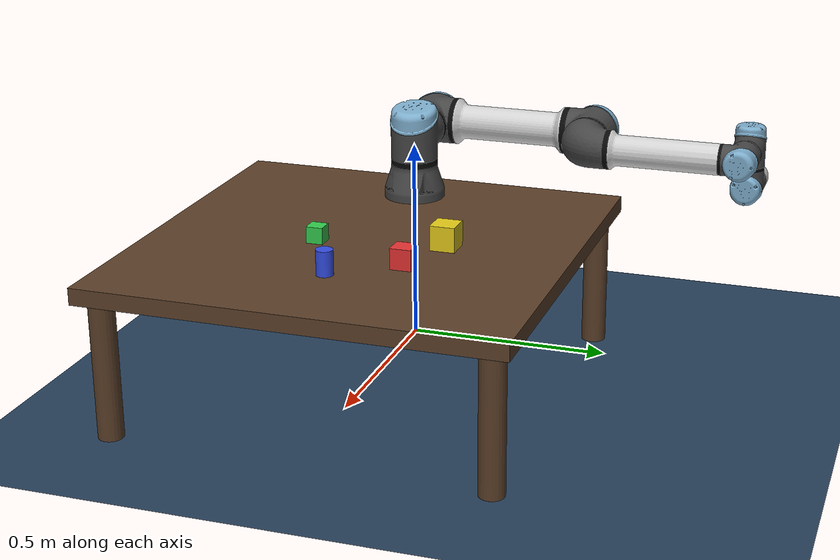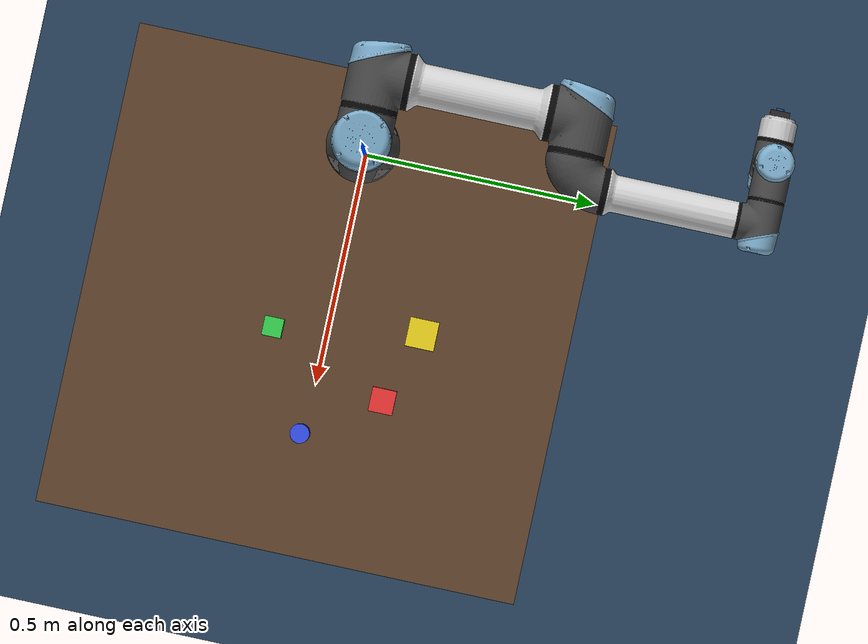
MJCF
<mujoco model="ur5e_robotiq_tabletop">
  <compiler angle="radian" autolimits="true"/>

  <option integrator="implicitfast" cone="elliptic" impratio="10"/>

  <statistic center="0.3 0 0.5" extent="1.5"/>

  <visual>
    <headlight diffuse="0.6 0.6 0.6" ambient="0.3 0.3 0.3" specular="0 0 0"/>
    <rgba haze="0.15 0.25 0.35 1"/>
    <global azimuth="150" elevation="-20"/>
  </visual>

  <!-- ==================== Assets ==================== -->
  <asset>
    <!-- Skybox and ground -->
    <texture type="skybox" builtin="gradient" rgb1="0.3 0.5 0.7" rgb2="0 0 0" width="512" height="3072"/>
    <texture type="2d" name="groundplane" builtin="checker" mark="edge"
             rgb1="0.2 0.3 0.4" rgb2="0.1 0.2 0.3" markrgb="0.8 0.8 0.8"
             width="300" height="300"/>
    <material name="groundplane" texture="groundplane" texuniform="true" texrepeat="5 5" reflectance="0.2"/>

    <!-- Table texture -->
    <texture type="2d" name="table_tex" builtin="flat" rgb1="0.6 0.5 0.4"
             width="512" height="512"/>
    <material name="table_mat" texture="table_tex" rgba="0.6 0.5 0.4 1" specular="0.1" shininess="0.1"/>

    <!-- UR5e materials -->
    <material name="black" rgba="0.033 0.033 0.033 1" specular="0.5" shininess="0.25"/>
    <material name="jointgray" rgba="0.278 0.278 0.278 1" specular="0.5" shininess="0.25"/>
    <material name="linkgray" rgba="0.82 0.82 0.82 1" specular="0.5" shininess="0.25"/>
    <material name="urblue" rgba="0.49 0.678 0.8 1" specular="0.5" shininess="0.25"/>

    <!-- Robotiq 2F-85 materials -->
    <material name="gray" rgba="0.5 0.5 0.5 1" specular="0.5" shininess="0.25"/>

    <!-- Object materials -->
    <material name="red_mat" rgba="0.9 0.2 0.2 1" specular="0.5" shininess="0.3"/>
    <material name="green_mat" rgba="0.2 0.8 0.3 1" specular="0.5" shininess="0.3"/>
    <material name="blue_mat" rgba="0.2 0.3 0.9 1" specular="0.5" shininess="0.3"/>
    <material name="yellow_mat" rgba="0.9 0.8 0.1 1" specular="0.5" shininess="0.3"/>

    <!-- UR5e meshes -->
    <mesh file="mujoco_menagerie/universal_robots_ur5e/assets/base_0.obj"/>
    <mesh file="mujoco_menagerie/universal_robots_ur5e/assets/base_1.obj"/>
    <mesh file="mujoco_menagerie/universal_robots_ur5e/assets/shoulder_0.obj"/>
    <mesh file="mujoco_menagerie/universal_robots_ur5e/assets/shoulder_1.obj"/>
    <mesh file="mujoco_menagerie/universal_robots_ur5e/assets/shoulder_2.obj"/>
    <mesh file="mujoco_menagerie/universal_robots_ur5e/assets/upperarm_0.obj"/>
    <mesh file="mujoco_menagerie/universal_robots_ur5e/assets/upperarm_1.obj"/>
    <mesh file="mujoco_menagerie/universal_robots_ur5e/assets/upperarm_2.obj"/>
    <mesh file="mujoco_menagerie/universal_robots_ur5e/assets/upperarm_3.obj"/>
    <mesh file="mujoco_menagerie/universal_robots_ur5e/assets/forearm_0.obj"/>
    <mesh file="mujoco_menagerie/universal_robots_ur5e/assets/forearm_1.obj"/>
    <mesh file="mujoco_menagerie/universal_robots_ur5e/assets/forearm_2.obj"/>
    <mesh file="mujoco_menagerie/universal_robots_ur5e/assets/forearm_3.obj"/>
    <mesh file="mujoco_menagerie/universal_robots_ur5e/assets/wrist1_0.obj"/>
    <mesh file="mujoco_menagerie/universal_robots_ur5e/assets/wrist1_1.obj"/>
    <mesh file="mujoco_menagerie/universal_robots_ur5e/assets/wrist1_2.obj"/>
    <mesh file="mujoco_menagerie/universal_robots_ur5e/assets/wrist2_0.obj"/>
    <mesh file="mujoco_menagerie/universal_robots_ur5e/assets/wrist2_1.obj"/>
    <mesh file="mujoco_menagerie/universal_robots_ur5e/assets/wrist2_2.obj"/>
    <mesh file="mujoco_menagerie/universal_robots_ur5e/assets/wrist3.obj"/>

    <!-- Robotiq 2F-85 meshes (STL files in mm, need scale to meters) -->
    <mesh file="mujoco_menagerie/robotiq_2f85/assets/base_mount.stl" scale="0.001 0.001 0.001"/>
    <mesh file="mujoco_menagerie/robotiq_2f85/assets/base.stl" scale="0.001 0.001 0.001"/>
    <mesh file="mujoco_menagerie/robotiq_2f85/assets/driver.stl" scale="0.001 0.001 0.001"/>
    <mesh file="mujoco_menagerie/robotiq_2f85/assets/coupler.stl" scale="0.001 0.001 0.001"/>
    <mesh file="mujoco_menagerie/robotiq_2f85/assets/follower.stl" scale="0.001 0.001 0.001"/>
    <mesh file="mujoco_menagerie/robotiq_2f85/assets/pad.stl" scale="0.001 0.001 0.001"/>
    <mesh file="mujoco_menagerie/robotiq_2f85/assets/silicone_pad.stl" scale="0.001 0.001 0.001"/>
    <mesh file="mujoco_menagerie/robotiq_2f85/assets/spring_link.stl" scale="0.001 0.001 0.001"/>
  </asset>

  <!-- ==================== Defaults ==================== -->
  <default>
    <!-- UR5e defaults -->
    <default class="ur5e">
      <material specular="0.5" shininess="0.25"/>
      <joint axis="0 1 0" range="-6.28319 6.28319" armature="0.1"/>
      <general gaintype="fixed" biastype="affine" ctrlrange="-6.2831 6.2831" gainprm="2000" biasprm="0 -2000 -400"
        forcerange="-150 150"/>
      <default class="size3">
        <default class="size3_limited">
          <joint range="-3.1415 3.1415"/>
          <general ctrlrange="-3.1415 3.1415"/>
        </default>
      </default>
      <default class="size1">
        <general gainprm="500" biasprm="0 -500 -100" forcerange="-28 28"/>
      </default>
      <default class="visual">
        <geom type="mesh" contype="0" conaffinity="0" group="2"/>
      </default>
      <default class="collision">
        <geom type="capsule" group="3"/>
        <default class="eef_collision">
          <geom type="cylinder"/>
        </default>
      </default>
      <site size="0.001" rgba="0.5 0.5 0.5 0.3" group="4"/>
    </default>

    <!-- Robotiq 2F-85 defaults -->
    <default class="2f85">
      <material specular="0.5" shininess="0.25"/>
      <general biastype="affine"/>
      <default class="driver">
        <joint axis="1 0 0" range="0 0.8" armature="0.005" damping="0.1" solimplimit="0.95 0.99 0.001"
          solreflimit="0.005 1"/>
      </default>
      <default class="follower">
        <joint axis="1 0 0" range="-0.87266 0.87266" armature="0.001" pos="0 -0.018 0.0065"
          solimplimit="0.95 0.99 0.001" solreflimit="0.005 1"/>
      </default>
      <default class="spring_link">
        <joint axis="1 0 0" range="-0.29670 0.8" stiffness="0.05" springref="2.62" damping="0.00125"
          armature="0.001" solimplimit="0.95 0.99 0.001" solreflimit="0.005 1"/>
      </default>
      <default class="coupler">
        <joint axis="1 0 0" range="-1.57 0" solimplimit="0.95 0.99 0.001"
          solreflimit="0.005 1"/>
      </default>
      <default class="r2f85_visual">
        <geom type="mesh" contype="0" conaffinity="0" group="2"/>
      </default>
      <default class="r2f85_collision">
        <geom type="mesh" group="3"/>
        <default class="pad_box1">
          <geom mass="0" type="box" pos="0 -0.0026 0.028125" size="0.011 0.004 0.009375" friction="0.7"
            solimp="0.95 0.99 0.001" solref="0.004 1" priority="1" rgba="0.55 0.55 0.55 1"/>
        </default>
        <default class="pad_box2">
          <geom mass="0" type="box" pos="0 -0.0026 0.009375" size="0.011 0.004 0.009375" friction="0.6"
            solimp="0.95 0.99 0.001" solref="0.004 1" priority="1" rgba="0.45 0.45 0.45 1"/>
        </default>
      </default>
    </default>
  </default>

  <!-- ==================== Worldbody ==================== -->
  <worldbody>
    <!-- Lights -->
    <light pos="0.5 0 1.5" dir="0 0 -1" directional="true"/>
    <light pos="0 -0.5 1.2" dir="0 0.3 -0.7" diffuse="0.4 0.4 0.4"/>

    <!-- Ground -->
    <geom name="floor" size="0 0 0.05" type="plane" material="groundplane"/>

    <!-- Table -->
    <body name="table" pos="0.35 0 0.35">
      <geom name="table_top" type="box" size="0.50 0.5 0.02" material="table_mat" mass="50"/>
      <geom name="table_leg1" type="cylinder" size="0.03 0.17" pos="0.45 0.45 -0.19" material="table_mat"/>
      <geom name="table_leg2" type="cylinder" size="0.03 0.17" pos="-0.45 0.45 -0.19" material="table_mat"/>
      <geom name="table_leg3" type="cylinder" size="0.03 0.17" pos="0.45 -0.45 -0.19" material="table_mat"/>
      <geom name="table_leg4" type="cylinder" size="0.03 0.17" pos="-0.45 -0.45 -0.19" material="table_mat"/>
    </body>

    <!-- ==================== UR5e Robot ==================== -->
    <body name="ur5e_base" pos="0.0 0 0.37" quat="0.7071 0 0 -0.7071">
      <light name="spotlight" mode="targetbodycom" target="wrist_2_link" pos="0 -1 2"/>
      <body name="base" quat="0 0 0 -1" childclass="ur5e">
        <inertial mass="4.0" pos="0 0 0" diaginertia="0.00443333156 0.00443333156 0.0072"/>
        <geom mesh="base_0" material="black" class="visual"/>
        <geom mesh="base_1" material="jointgray" class="visual"/>
        <body name="shoulder_link" pos="0 0 0.163">
          <inertial mass="3.7" pos="0 0 0" diaginertia="0.0102675 0.0102675 0.00666"/>
          <joint name="shoulder_pan_joint" class="size3" axis="0 0 1"/>
          <geom mesh="shoulder_0" material="urblue" class="visual"/>
          <geom mesh="shoulder_1" material="black" class="visual"/>
          <geom mesh="shoulder_2" material="jointgray" class="visual"/>
          <geom class="collision" size="0.06 0.06" pos="0 0 -0.04"/>
          <body name="upper_arm_link" pos="0 0.138 0" quat="1 0 1 0">
            <inertial mass="8.393" pos="0 0 0.2125" diaginertia="0.133886 0.133886 0.0151074"/>
            <joint name="shoulder_lift_joint" class="size3"/>
            <geom mesh="upperarm_0" material="linkgray" class="visual"/>
            <geom mesh="upperarm_1" material="black" class="visual"/>
            <geom mesh="upperarm_2" material="jointgray" class="visual"/>
            <geom mesh="upperarm_3" material="urblue" class="visual"/>
            <geom class="collision" pos="0 -0.04 0" quat="1 1 0 0" size="0.06 0.06"/>
            <geom class="collision" size="0.05 0.2" pos="0 0 0.2"/>
            <body name="forearm_link" pos="0 -0.131 0.425">
              <inertial mass="2.275" pos="0 0 0.196" diaginertia="0.0311796 0.0311796 0.004095"/>
              <joint name="elbow_joint" class="size3_limited"/>
              <geom mesh="forearm_0" material="urblue" class="visual"/>
              <geom mesh="forearm_1" material="linkgray" class="visual"/>
              <geom mesh="forearm_2" material="black" class="visual"/>
              <geom mesh="forearm_3" material="jointgray" class="visual"/>
              <geom class="collision" pos="0 0.08 0" quat="1 1 0 0" size="0.055 0.06"/>
              <geom class="collision" size="0.038 0.19" pos="0 0 0.2"/>
              <body name="wrist_1_link" pos="0 0 0.392" quat="1 0 1 0">
                <inertial mass="1.219" pos="0 0.127 0" diaginertia="0.0025599 0.0025599 0.0021942"/>
                <joint name="wrist_1_joint" class="size1"/>
                <geom mesh="wrist1_0" material="black" class="visual"/>
                <geom mesh="wrist1_1" material="urblue" class="visual"/>
                <geom mesh="wrist1_2" material="jointgray" class="visual"/>
                <geom class="collision" pos="0 0.05 0" quat="1 1 0 0" size="0.04 0.07"/>
                <body name="wrist_2_link" pos="0 0.127 0">
                  <inertial mass="1.219" pos="0 0 0.1" diaginertia="0.0025599 0.0025599 0.0021942"/>
                  <joint name="wrist_2_joint" axis="0 0 1" class="size1"/>
                  <geom mesh="wrist2_0" material="black" class="visual"/>
                  <geom mesh="wrist2_1" material="urblue" class="visual"/>
                  <geom mesh="wrist2_2" material="jointgray" class="visual"/>
                  <geom class="collision" size="0.04 0.06" pos="0 0 0.04"/>
                  <geom class="collision" pos="0 0.02 0.1" quat="1 1 0 0" size="0.04 0.04"/>
                  <body name="wrist_3_link" pos="0 0 0.1">
                    <inertial mass="0.1889" pos="0 0.0771683 0" quat="1 0 0 1"
                      diaginertia="0.000132134 9.90863e-05 9.90863e-05"/>
                    <joint name="wrist_3_joint" class="size1"/>
                    <geom material="linkgray" mesh="wrist3" class="visual"/>
                    <geom class="eef_collision" pos="0 0.08 0" quat="1 1 0 0" size="0.04 0.02"/>
                    <site name="attachment_site" pos="0 0.1 0" quat="-1 1 0 0"/>

                    <!-- Wrist camera (eye-in-hand) — 与夹爪同轴向下观察 -->
                    <camera name="wrist_cam" pos="0 0.1 0.04" xyaxes="1 0 0 0 0 1" fovy="75"/>

                    <!-- 相机外壳可视化模型 (纯视觉，不参与碰撞) -->
                    <body name="wrist_cam_body" pos="0 0.1 0.04">
                      <!-- 相机主体 (深灰色小方盒) -->
                      <geom type="box" size="0.02 0.015 0.012" rgba="0.15 0.15 0.15 1"
                            contype="0" conaffinity="0" group="2" mass="0"/>
                      <!-- 镜头 (青色圆柱，朝向夹爪方向/+Y) -->
                      <geom type="cylinder" size="0.008 0.005" pos="0 0.015 0"
                            quat="0.707 0.707 0 0" rgba="0.1 0.3 0.5 0.9"
                            contype="0" conaffinity="0" group="2" mass="0"/>
                      <!-- 指示灯 (小绿点) -->
                      <geom type="sphere" size="0.003" pos="0.015 0.005 0.008"
                            rgba="0.1 0.9 0.1 1"
                            contype="0" conaffinity="0" group="2" mass="0"/>
                    </body>

                    <!-- ==================== Robotiq 2F-85 Gripper ==================== -->
                    <body name="gripper_base_mount" pos="0 0.1 0" quat="-1 1 0 0" childclass="2f85">
                      <geom class="r2f85_visual" mesh="base_mount" material="black"/>
                      <geom class="r2f85_collision" mesh="base_mount"/>
                      <body name="gripper_base" pos="0 0 0.0038" quat="1 0 0 -1">
                        <inertial mass="0.777441" pos="0 -2.70394e-05 0.0354675" quat="1 -0.00152849 0 0"
                          diaginertia="0.000260285 0.000225381 0.000152708"/>
                        <geom class="r2f85_visual" mesh="base" material="black"/>
                        <geom class="r2f85_collision" mesh="base"/>
                        <site name="pinch" pos="0 0 0.145" type="sphere" group="5" rgba="0.9 0.9 0.9 1" size="0.005"/>

                        <!-- Right-hand side 4-bar linkage -->
                        <body name="right_driver" pos="0 0.0306011 0.054904">
                          <inertial mass="0.00899563" pos="2.96931e-12 0.0177547 0.00107314"
                            quat="0.681301 0.732003 0 0"
                            diaginertia="1.72352e-06 1.60906e-06 3.22006e-07"/>
                          <joint name="right_driver_joint" class="driver"/>
                          <geom class="r2f85_visual" mesh="driver" material="gray"/>
                          <geom class="r2f85_collision" mesh="driver"/>
                          <body name="right_coupler" pos="0 0.0315 -0.0041">
                            <inertial mass="0.0140974" pos="0 0.00301209 0.0232175"
                              quat="0.705636 -0.0455904 0.0455904 0.705636"
                              diaginertia="4.16206e-06 3.52216e-06 8.88131e-07"/>
                            <joint name="right_coupler_joint" class="coupler"/>
                            <geom class="r2f85_visual" mesh="coupler" material="black"/>
                            <geom class="r2f85_collision" mesh="coupler"/>
                          </body>
                        </body>
                        <body name="right_spring_link" pos="0 0.0132 0.0609">
                          <inertial mass="0.0221642" pos="-8.65005e-09 0.0181624 0.0212658"
                            quat="0.663403 -0.244737 0.244737 0.663403"
                            diaginertia="8.96853e-06 6.71733e-06 2.63931e-06"/>
                          <joint name="right_spring_link_joint" class="spring_link"/>
                          <geom class="r2f85_visual" mesh="spring_link" material="black"/>
                          <geom class="r2f85_collision" mesh="spring_link"/>
                          <body name="right_follower" pos="0 0.055 0.0375">
                            <inertial mass="0.0125222" pos="0 -0.011046 0.0124786" quat="1 0.1664 0 0"
                              diaginertia="2.67415e-06 2.4559e-06 6.02031e-07"/>
                            <joint name="right_follower_joint" class="follower"/>
                            <geom class="r2f85_visual" mesh="follower" material="black"/>
                            <geom class="r2f85_collision" mesh="follower"/>
                            <body name="right_pad" pos="0 -0.0189 0.01352">
                              <geom class="pad_box1" name="right_pad1"/>
                              <geom class="pad_box2" name="right_pad2"/>
                              <inertial mass="0.0035" pos="0 -0.0025 0.0185" quat="0.707107 0 0 0.707107"
                                diaginertia="4.73958e-07 3.64583e-07 1.23958e-07"/>
                              <geom class="r2f85_visual" mesh="pad"/>
                              <body name="right_silicone_pad">
                                <geom class="r2f85_visual" mesh="silicone_pad" material="black"/>
                              </body>
                            </body>
                          </body>
                        </body>

                        <!-- Left-hand side 4-bar linkage -->
                        <body name="left_driver" pos="0 -0.0306011 0.054904" quat="0 0 0 1">
                          <inertial mass="0.00899563" pos="0 0.0177547 0.00107314"
                            quat="0.681301 0.732003 0 0"
                            diaginertia="1.72352e-06 1.60906e-06 3.22006e-07"/>
                          <joint name="left_driver_joint" class="driver"/>
                          <geom class="r2f85_visual" mesh="driver" material="gray"/>
                          <geom class="r2f85_collision" mesh="driver"/>
                          <body name="left_coupler" pos="0 0.0315 -0.0041">
                            <inertial mass="0.0140974" pos="0 0.00301209 0.0232175"
                              quat="0.705636 -0.0455904 0.0455904 0.705636"
                              diaginertia="4.16206e-06 3.52216e-06 8.88131e-07"/>
                            <joint name="left_coupler_joint" class="coupler"/>
                            <geom class="r2f85_visual" mesh="coupler" material="black"/>
                            <geom class="r2f85_collision" mesh="coupler"/>
                          </body>
                        </body>
                        <body name="left_spring_link" pos="0 -0.0132 0.0609" quat="0 0 0 1">
                          <inertial mass="0.0221642" pos="-8.65005e-09 0.0181624 0.0212658"
                            quat="0.663403 -0.244737 0.244737 0.663403"
                            diaginertia="8.96853e-06 6.71733e-06 2.63931e-06"/>
                          <joint name="left_spring_link_joint" class="spring_link"/>
                          <geom class="r2f85_visual" mesh="spring_link" material="black"/>
                          <geom class="r2f85_collision" mesh="spring_link"/>
                          <body name="left_follower" pos="0 0.055 0.0375">
                            <inertial mass="0.0125222" pos="0 -0.011046 0.0124786" quat="1 0.1664 0 0"
                              diaginertia="2.67415e-06 2.4559e-06 6.02031e-07"/>
                            <joint name="left_follower_joint" class="follower"/>
                            <geom class="r2f85_visual" mesh="follower" material="black"/>
                            <geom class="r2f85_collision" mesh="follower"/>
                            <body name="left_pad" pos="0 -0.0189 0.01352">
                              <geom class="pad_box1" name="left_pad1"/>
                              <geom class="pad_box2" name="left_pad2"/>
                              <inertial mass="0.0035" pos="0 -0.0025 0.0185" quat="1 0 0 1"
                                diaginertia="4.73958e-07 3.64583e-07 1.23958e-07"/>
                              <geom class="r2f85_visual" mesh="pad"/>
                              <body name="left_silicone_pad">
                                <geom class="r2f85_visual" mesh="silicone_pad" material="black"/>
                              </body>
                            </body>
                          </body>
                        </body>
                      </body>
                    </body>
                    <!-- End of Robotiq 2F-85 -->

                  </body>
                </body>
              </body>
            </body>
          </body>
        </body>
      </body>
    </body>

    <!-- ==================== Overhead Camera ==================== -->
    <camera name="overhead_cam" pos="0.35 0 1.6" quat="0.707 0.707 0 0" fovy="70"/>

    <!-- ==================== Side Camera (for visualization) ==================== -->
    <camera name="side_cam" pos="-0.3 -1.2 1.0" quat="0.6 0.36 0.18 0.69" fovy="50"/>

    <!-- ==================== Graspable Objects ==================== -->
    <body name="red_cube" pos="0.5 0.15 0.395">
      <freejoint name="red_cube_joint"/>
      <geom name="red_cube_geom" type="box" size="0.025 0.025 0.025" material="red_mat"
            mass="0.1" friction="1.0 0.005 0.001"/>
    </body>

    <body name="green_cube" pos="0.4 -0.1 0.39">
      <freejoint name="green_cube_joint"/>
      <geom name="green_cube_geom" type="box" size="0.02 0.02 0.02" material="green_mat"
            mass="0.08" friction="1.0 0.005 0.001"/>
    </body>

    <body name="blue_cylinder" pos="0.6 0.0 0.40">
      <freejoint name="blue_cylinder_joint"/>
      <geom name="blue_cylinder_geom" type="cylinder" size="0.02 0.03" material="blue_mat"
            mass="0.1" friction="1.0 0.005 0.001"/>
    </body>

    <body name="yellow_cube" pos="0.35 0.2 0.40">
      <freejoint name="yellow_cube_joint"/>
      <geom name="yellow_cube_geom" type="box" size="0.03 0.03 0.03" material="yellow_mat"
            mass="0.12" friction="1.0 0.005 0.001"/>
    </body>
  </worldbody>

  <!-- ==================== Contact Exclusions ==================== -->
  <contact>
    <!-- Robotiq internal exclusions -->
    <exclude body1="gripper_base" body2="left_driver"/>
    <exclude body1="gripper_base" body2="right_driver"/>
    <exclude body1="gripper_base" body2="left_spring_link"/>
    <exclude body1="gripper_base" body2="right_spring_link"/>
    <exclude body1="right_coupler" body2="right_follower"/>
    <exclude body1="left_coupler" body2="left_follower"/>
    <!-- Exclude gripper from wrist -->
    <exclude body1="wrist_3_link" body2="gripper_base_mount"/>
    <exclude body1="wrist_3_link" body2="gripper_base"/>
    <!-- Exclude gripper internal parts from table and floor -->
    <exclude body1="gripper_base_mount" body2="gripper_base"/>
    <exclude body1="right_driver" body2="right_spring_link"/>
    <exclude body1="left_driver" body2="left_spring_link"/>
    <exclude body1="right_follower" body2="right_pad"/>
    <exclude body1="left_follower" body2="left_pad"/>
  </contact>

  <!-- ==================== Tendons ==================== -->
  <tendon>
    <fixed name="split">
      <joint joint="right_driver_joint" coef="0.5"/>
      <joint joint="left_driver_joint" coef="0.5"/>
    </fixed>
  </tendon>

  <!-- ==================== Equality Constraints ==================== -->
  <equality>
    <connect anchor="0 0 0" body1="right_follower" body2="right_coupler"
             solimp="0.95 0.99 0.001" solref="0.005 1"/>
    <connect anchor="0 0 0" body1="left_follower" body2="left_coupler"
             solimp="0.95 0.99 0.001" solref="0.005 1"/>
    <joint joint1="right_driver_joint" joint2="left_driver_joint"
           polycoef="0 1 0 0 0" solimp="0.95 0.99 0.001" solref="0.005 1"/>
  </equality>

  <!-- ==================== Actuators ==================== -->
  <actuator>
    <!-- UR5e arm actuators (6 DOF) -->
    <general class="size3" name="shoulder_pan" joint="shoulder_pan_joint"/>
    <general class="size3" name="shoulder_lift" joint="shoulder_lift_joint"/>
    <general class="size3_limited" name="elbow" joint="elbow_joint"/>
    <general class="size1" name="wrist_1" joint="wrist_1_joint"/>
    <general class="size1" name="wrist_2" joint="wrist_2_joint"/>
    <general class="size1" name="wrist_3" joint="wrist_3_joint"/>
    <!-- Robotiq 2F-85 gripper actuator -->
    <general class="2f85" name="fingers_actuator" tendon="split" forcerange="-5 5"
             ctrlrange="0 255" gainprm="0.3137255 0 0" biasprm="0 -100 -10"/>
  </actuator>

  <!-- ==================== Keyframes ==================== -->
  <keyframe>
    <key name="home"
         qpos="-1.5708 -1.5708 1.5708 -1.5708 -1.5708 0 0 0 0 0 0 0 0 0
                0.5 0.15 0.395 1 0 0 0
                0.4 -0.1 0.39 1 0 0 0
                0.6 0.0 0.40 1 0 0 0
                0.35 0.2 0.40 1 0 0 0"
         ctrl="-1.5708 -1.5708 1.5708 -1.5708 -1.5708 0 0"/>
  </keyframe>
</mujoco>
